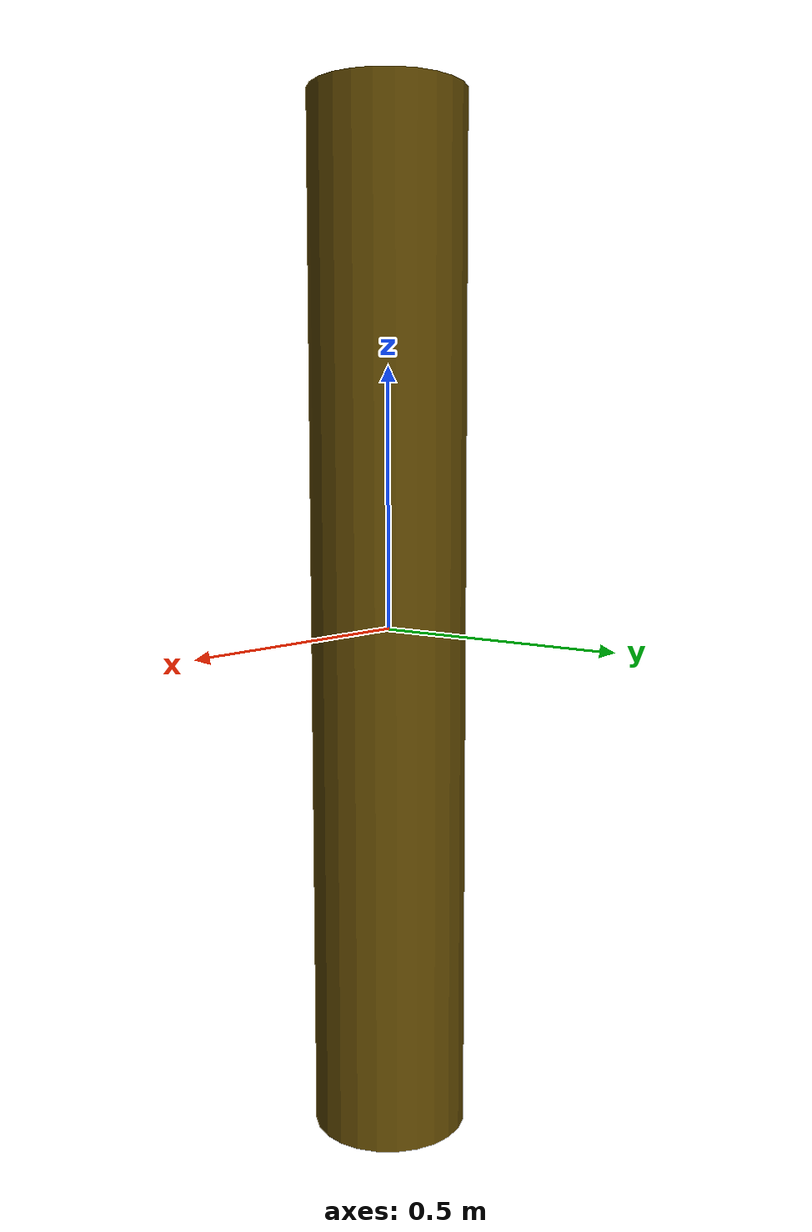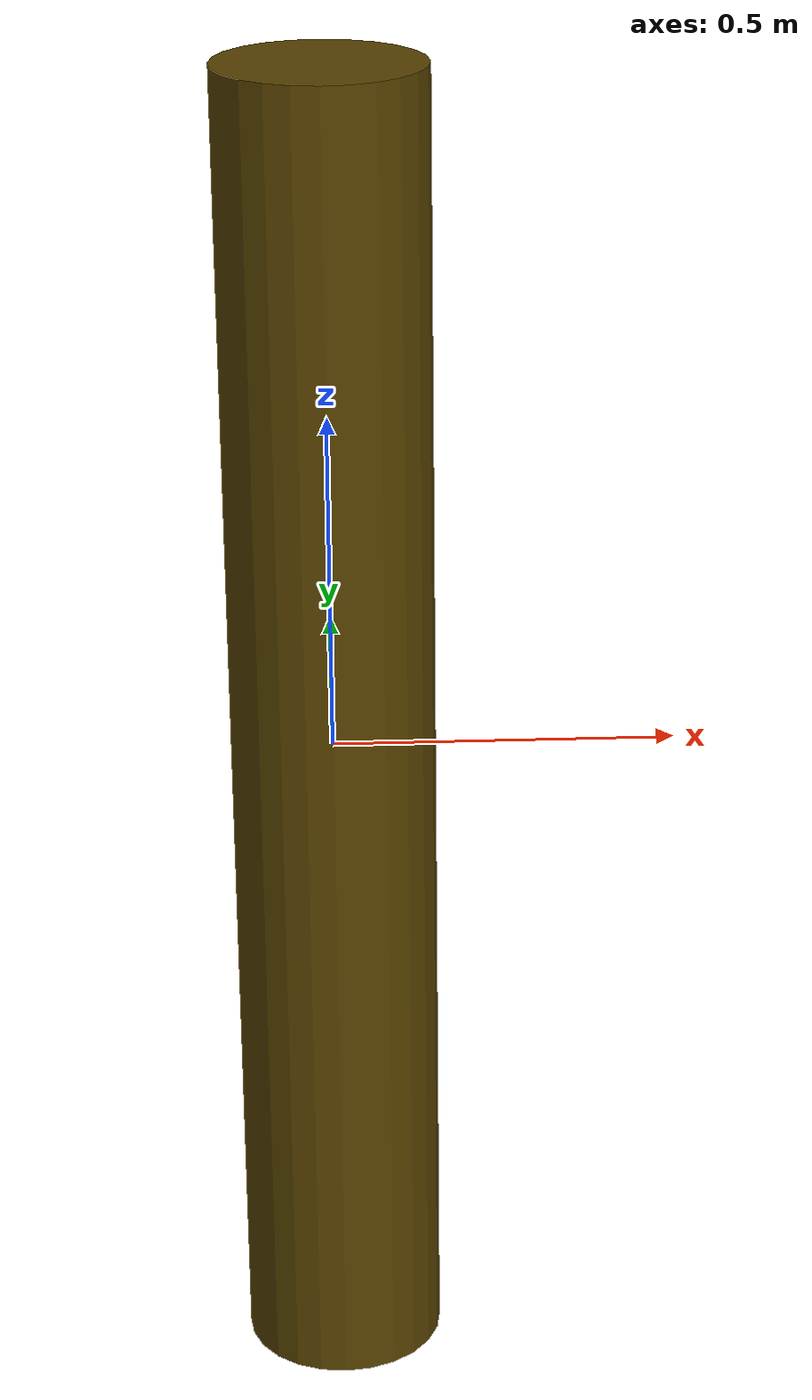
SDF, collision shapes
<?xml version='1.0'?>
<sdf version='1.6'>
  <model name='human_female_1'>
    <link name='link_0'>
        <visual name='visual'>
        <pose frame=''>0 0 0 0 -0 0</pose>
        <geometry>
          <mesh>
            <uri>model://human_female_2/meshes/belt.dae</uri>
            <scale>1 1 1</scale>
          </mesh>
        </geometry>
        <material>
          <lighting>1</lighting>
          <script>
            <uri>file://media/materials/scripts/gazebo.material</uri>
            <name>Gazebo/Grey</name>
          </script>
          <ambient>0.345 0.258 0 1</ambient>
          <diffuse>0.345 0.258 0 1</diffuse>
          <specular>0.01 0.01 0.01 1</specular>
          <emissive>0 0 0 1</emissive>
        </material>
        <cast_shadows>1</cast_shadows>
        <transparency>0</transparency>
      </visual>
      <collision name='collision'>
        <laser_retro>0</laser_retro>
        <max_contacts>10</max_contacts>
        <pose frame=''>0 0 0 0 -0 0</pose>
        <geometry>
          <cylinder>
            <radius>0.15</radius>
            <length>2</length>
          </cylinder>
        </geometry>
       </collision>
    </link>
    <link name='link_1'>
       <visual name='visual'>
        <pose frame=''>0 0 0 0 -0 0</pose>
        <geometry>
          <mesh>
            <uri>model://human_female_1/meshes/eyeballs.dae</uri>
            <scale>1 1 1</scale>
          </mesh>
        </geometry>
        <material>
          <lighting>1</lighting>
          <script>
            <uri>file://media/materials/scripts/gazebo.material</uri>
            <name>Gazebo/Grey</name>
          </script>
          <ambient>1 1 1 1</ambient>
          <diffuse>0.9 0.9 0.9 1</diffuse>
          <specular>0.01 0.01 0.01 1</specular>
          <emissive>0 0 0 1</emissive>
        </material>
        <cast_shadows>1</cast_shadows>
        <transparency>0</transparency>
      </visual>
      <collision name='collision'>
        <laser_retro>0</laser_retro>
        <max_contacts>10</max_contacts>
        <pose frame=''>0 0 0 0 -0 0</pose>
        <geometry>
          <cylinder>
            <radius>0.15</radius>
            <length>2</length>
          </cylinder>
        </geometry>
        </collision>
    </link>
    <link name='link_10'>
        <visual name='visual'>
        <pose frame=''>0 0 0 0 -0 0</pose>
        <geometry>
          <mesh>
            <uri>model://human_female_1/meshes/shoes.dae</uri>
            <scale>1 1 1</scale>
          </mesh>
        </geometry>
        <material>
          <lighting>1</lighting>
          <script>
            <uri>file://media/materials/scripts/gazebo.material</uri>
            <name>Gazebo/Grey</name>
          </script>
          <ambient>0.9 0 0 1</ambient>
          <diffuse>0.9 0 0 1</diffuse>
          <specular>0.01 0.01 0.01 1</specular>
          <emissive>0 0 0 1</emissive>
        </material>
        <cast_shadows>1</cast_shadows>
        <transparency>0</transparency>
      </visual>
      <collision name='collision'>
        <laser_retro>0</laser_retro>
        <max_contacts>10</max_contacts>
        <pose frame=''>0 0 0 0 -0 0</pose>
        <geometry>
          <cylinder>
            <radius>0.15</radius>
            <length>2</length>
          </cylinder>
        </geometry>
         </collision>
    </link>
    <link name='link_11'>
         <visual name='visual'>
        <pose frame=''>0 0 0 0 -0 0</pose>
        <geometry>
          <mesh>
            <uri>model://human_female_1/meshes/skin.dae</uri>
            <scale>1 1 1</scale>
          </mesh>
        </geometry>
       <material>
          <script>
            <uri>model://human_female_1/materials/scripts</uri>
            <uri>model://human_female_1/materials/textures</uri>
            <name>skin_1</name>
          </script>
        </material>
        <cast_shadows>1</cast_shadows>
        <transparency>0</transparency>
      </visual>
      <collision name='collision'>
        <laser_retro>0</laser_retro>
        <max_contacts>10</max_contacts>
        <pose frame=''>0 0 0 0 -0 0</pose>
        <geometry>
          <cylinder>
            <radius>0.15</radius>
            <length>2</length>
          </cylinder>
        </geometry>
       </collision>
    </link>
    <link name='link_12'>
         <visual name='visual'>
        <pose frame=''>0 0 0 0 -0 0</pose>
        <geometry>
          <mesh>
            <uri>model://human_female_1/meshes/teeth.dae</uri>
            <scale>1 1 1</scale>
          </mesh>
        </geometry>
        <material>
          <lighting>1</lighting>
          <script>
            <uri>file://media/materials/scripts/gazebo.material</uri>
            <name>Gazebo/Grey</name>
          </script>
          <ambient>0.95 0.95 0.95 1</ambient>
          <diffuse>0.95 0.95 0.951 1</diffuse>
          <specular>0.01 0.01 0.01 1</specular>
          <emissive>0 0 0 1</emissive>
        </material>
        <cast_shadows>1</cast_shadows>
        <transparency>0</transparency>
      </visual>
      <collision name='collision'>
        <laser_retro>0</laser_retro>
        <max_contacts>10</max_contacts>
        <pose frame=''>0 0 0 0 -0 0</pose>
        <geometry>
          <cylinder>
            <radius>0.15</radius>
            <length>2</length>
          </cylinder>
        </geometry>
        </collision>
    </link>
    <link name='link_2'>
        <visual name='visual'>
        <pose frame=''>0 0 0 0 -0 0</pose>
        <geometry>
          <mesh>
            <uri>model://human_female_1/meshes/eyebrows.dae</uri>
            <scale>1 1 1</scale>
          </mesh>
        </geometry>
               <material>
          <script>
            <uri>model://human_female_1/materials/scripts</uri>
            <uri>model://human_female_1/materials/textures</uri>
            <name>hair_1</name>
          </script>
        </material>
        <cast_shadows>1</cast_shadows>
        <transparency>0</transparency>
      </visual>
      <collision name='collision'>
        <laser_retro>0</laser_retro>
        <max_contacts>10</max_contacts>
        <pose frame=''>0 0 0 0 -0 0</pose>
        <geometry>
          <cylinder>
            <radius>0.15</radius>
            <length>2</length>
          </cylinder>
        </geometry>
        </collision>
    </link>
    <link name='link_3'>
         <visual name='visual'>
        <pose frame=''>0 0 0 0 -0 0</pose>
        <geometry>
          <mesh>
            <uri>model://human_female_1/meshes/eyes_makeup.dae</uri>
            <scale>1 1 1</scale>
          </mesh>
        </geometry>
        <material>
          <lighting>1</lighting>
          <script>
            <uri>file://media/materials/scripts/gazebo.material</uri>
            <name>Gazebo/Grey</name>
          </script>
          <ambient>0.1 0.1 0.1 1</ambient>
          <diffuse>0.1 0.1 0.1 1</diffuse>
          <specular>0.01 0.01 0.01 1</specular>
          <emissive>0 0 0 1</emissive>
        </material>
        <cast_shadows>1</cast_shadows>
        <transparency>0</transparency>
      </visual>
      <collision name='collision'>
        <laser_retro>0</laser_retro>
        <max_contacts>10</max_contacts>
        <pose frame=''>0 0 0 0 -0 0</pose>
        <geometry>
          <cylinder>
            <radius>0.15</radius>
            <length>2</length>
          </cylinder>
        </geometry>
        </collision>
    </link>
    <link name='link_4'>
         <visual name='visual'>
        <pose frame=''>0 0 0 0 -0 0</pose>
        <geometry>
          <mesh>
            <uri>model://human_female_1/meshes/hair.dae</uri>
            <scale>1 1 1</scale>
          </mesh>
        </geometry>
           <material>
          <script>
            <uri>model://human_female_1/materials/scripts</uri>
            <uri>model://human_female_1/materials/textures</uri>
            <name>hair_1</name>
          </script>
        </material>
        <cast_shadows>1</cast_shadows>
        <transparency>0</transparency>
      </visual>
      <collision name='collision'>
        <laser_retro>0</laser_retro>
        <max_contacts>10</max_contacts>
        <pose frame=''>0 0 0 0 -0 0</pose>
        <geometry>
          <cylinder>
            <radius>0.15</radius>
            <length>2</length>
          </cylinder>
        </geometry>
         </collision>
    </link>
    <link name='link_5'>
        <visual name='visual'>
        <pose frame=''>0 0 0 0 -0 0</pose>
        <geometry>
          <mesh>
            <uri>model://human_female_1/meshes/lenses.dae</uri>
            <scale>1 1 1</scale>
          </mesh>
        </geometry>
        <material>
          <lighting>1</lighting>
          <script>
            <uri>file://media/materials/scripts/gazebo.material</uri>
            <name>Gazebo/Grey</name>
          </script>
          <ambient>0.215 0.694 0.870 1</ambient>
          <diffuse>0.215 0.694 0.870 1</diffuse>
          <specular>0.01 0.01 0.01 1</specular>
          <emissive>0 0 0 1</emissive>
        </material>
        <cast_shadows>1</cast_shadows>
        <transparency>0</transparency>
      </visual>
      <collision name='collision'>
        <laser_retro>0</laser_retro>
        <max_contacts>10</max_contacts>
        <pose frame=''>0 0 0 0 -0 0</pose>
        <geometry>
          <cylinder>
            <radius>0.15</radius>
            <length>2</length>
          </cylinder>
        </geometry>
         </collision>
    </link>
    <link name='link_6'>
        <visual name='visual'>
        <pose frame=''>0 0 0 0 -0 0</pose>
        <geometry>
          <mesh>
            <uri>model://human_female_1/meshes/lips.dae</uri>
            <scale>1 1 1</scale>
          </mesh>
        </geometry>
        <material>
          <lighting>1</lighting>
          <script>
            <uri>file://media/materials/scripts/gazebo.material</uri>
            <name>Gazebo/Grey</name>
          </script>
          <ambient>0.870 0.215 0.415 1</ambient>
          <diffuse>0.870 0.215 0.415 1</diffuse>
          <specular>0.01 0.01 0.01 1</specular>
          <emissive>0 0 0 1</emissive>
        </material>
        <cast_shadows>1</cast_shadows>
        <transparency>0</transparency>
      </visual>
      <collision name='collision'>
        <laser_retro>0</laser_retro>
        <max_contacts>10</max_contacts>
        <pose frame=''>0 0 0 0 -0 0</pose>
        <geometry>
          <cylinder>
            <radius>0.15</radius>
            <length>2</length>
          </cylinder>
        </geometry>
       </collision>
    </link>
    <link name='link_7'>
        <visual name='visual'>
        <pose frame=''>0 0 0 0 -0 0</pose>
        <geometry>
          <mesh>
            <uri>model://human_female_1/meshes/pants.dae</uri>
            <scale>1 1 1</scale>
          </mesh>
        </geometry>
        <material>
          <lighting>1</lighting>
          <script>
            <uri>file://media/materials/scripts/gazebo.material</uri>
            <name>Gazebo/Grey</name>
          </script>
          <ambient>0.870 0.860 0.870 1</ambient>
          <diffuse>0.870 0.860 0.870 1</diffuse>
          <specular>0.01 0.01 0.01 1</specular>
          <emissive>0 0 0 1</emissive>
        </material>
        <cast_shadows>1</cast_shadows>
        <transparency>0</transparency>
      </visual>
      <collision name='collision'>
        <laser_retro>0</laser_retro>
        <max_contacts>10</max_contacts>
        <pose frame=''>0 0 0 0 -0 0</pose>
        <geometry>
          <cylinder>
            <radius>0.15</radius>
            <length>2</length>
          </cylinder>
        </geometry>
       </collision>
    </link>
    <link name='link_8'>
        <visual name='visual'>
        <pose frame=''>0 0 0 0 -0 0</pose>
        <geometry>
          <mesh>
            <uri>model://human_female_1/meshes/pupils.dae</uri>
            <scale>1 1 1</scale>
          </mesh>
        </geometry>
        <material>
          <lighting>1</lighting>
          <script>
            <uri>file://media/materials/scripts/gazebo.material</uri>
            <name>Gazebo/Grey</name>
          </script>
          <ambient>0 0 0 1</ambient>
          <diffuse>0 0 0 1</diffuse>
          <specular>0.01 0.01 0.01 1</specular>
          <emissive>0 0 0 1</emissive>
        </material>
        <cast_shadows>1</cast_shadows>
        <transparency>0</transparency>
      </visual>
      <collision name='collision'>
        <laser_retro>0</laser_retro>
        <max_contacts>10</max_contacts>
        <pose frame=''>0 0 0 0 -0 0</pose>
        <geometry>
          <cylinder>
            <radius>0.15</radius>
            <length>2</length>
          </cylinder>
        </geometry>
        </collision>
    </link>
    <link name='link_9'>
       <visual name='visual'>
        <pose frame=''>0 0 0 0 -0 0</pose>
        <geometry>
          <mesh>
            <uri>model://human_female_1/meshes/shirt.dae</uri>
            <scale>1 1 1</scale>
          </mesh>
        </geometry>
        <material>
          <lighting>1</lighting>
          <script>
            <uri>file://media/materials/scripts/gazebo.material</uri>
            <name>Gazebo/Grey</name>
          </script>
          <ambient>0.9 0 0 1</ambient>
          <diffuse>0 0.9 0 1</diffuse>
          <specular>0.01 0.01 0.01 1</specular>
          <emissive>0 0 0 1</emissive>
        </material>
        <cast_shadows>1</cast_shadows>
        <transparency>0</transparency>
      </visual>
      <collision name='collision'>
        <laser_retro>0</laser_retro>
        <max_contacts>10</max_contacts>
        <pose frame=''>0 0 0 0 -0 0</pose>
        <geometry>
          <cylinder>
            <radius>0.15</radius>
            <length>2</length>
          </cylinder>
        </geometry>
       </collision>
    </link>
    <static>1</static>
    <allow_auto_disable>1</allow_auto_disable>
  </model>
</sdf>
